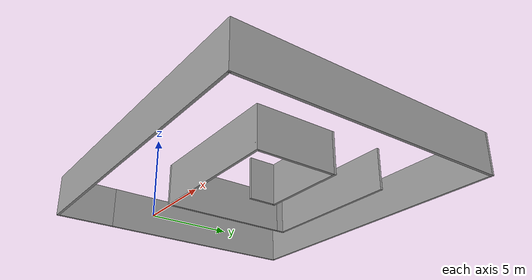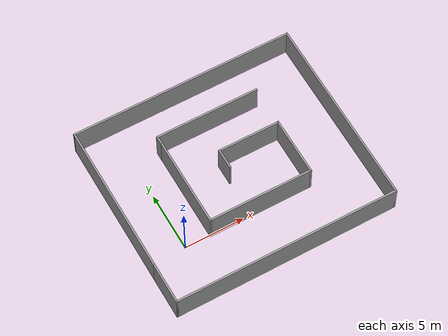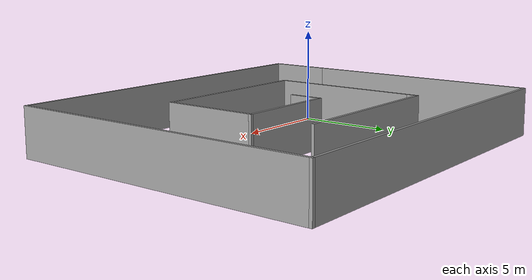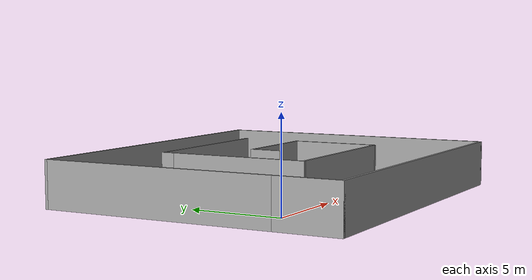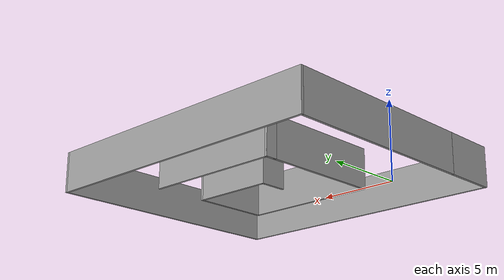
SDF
<?xml version='1.0'?>
<sdf version='1.7'>
  <model name='amr_floor_plan'>
    <pose>6.08 3.37 0 0 -0 0</pose>
    <link name='Wall_0'>
      <collision name='Wall_0_Collision'>
        <geometry>
          <box>
            <size>3.5 0.15 2.5</size>
          </box>
        </geometry>
        <pose>0 0 1.25 0 -0 0</pose>
      </collision>
      <visual name='Wall_0_Visual'>
        <pose>0 0 1.25 0 -0 0</pose>
        <geometry>
          <box>
            <size>3.5 0.15 2.5</size>
          </box>
        </geometry>
        <material>
          <script>
            <uri>file://media/materials/scripts/gazebo.material</uri>
            <name>Gazebo/Grey</name>
          </script>
          <ambient>1 1 1 1</ambient>
        </material>
        <meta>
          <layer>0</layer>
        </meta>
      </visual>
      <pose>-9.3 -6.375 0 0 -0 -1.5708</pose>
    </link>
    <link name='Wall_1'>
      <collision name='Wall_1_Collision'>
        <geometry>
          <box>
            <size>18.75 0.15 2.5</size>
          </box>
        </geometry>
        <pose>0 0 1.25 0 -0 0</pose>
      </collision>
      <visual name='Wall_1_Visual'>
        <pose>0 0 1.25 0 -0 0</pose>
        <geometry>
          <box>
            <size>18.75 0.15 2.5</size>
          </box>
        </geometry>
        <material>
          <script>
            <uri>file://media/materials/scripts/gazebo.material</uri>
            <name>Gazebo/Grey</name>
          </script>
          <ambient>1 1 1 1</ambient>
        </material>
        <meta>
          <layer>0</layer>
        </meta>
      </visual>
      <pose>-0 -8.05 0 0 -0 0</pose>
    </link>
    <link name='Wall_10'>
      <collision name='Wall_10_Collision'>
        <geometry>
          <box>
            <size>8.75 0.15 2.5</size>
          </box>
        </geometry>
        <pose>0 0 1.25 0 -0 0</pose>
      </collision>
      <visual name='Wall_10_Visual'>
        <pose>0 0 1.25 0 -0 0</pose>
        <geometry>
          <box>
            <size>8.75 0.15 2.5</size>
          </box>
        </geometry>
        <material>
          <script>
            <uri>file://media/materials/scripts/gazebo.material</uri>
            <name>Gazebo/Grey</name>
          </script>
          <ambient>1 1 1 1</ambient>
        </material>
        <meta>
          <layer>0</layer>
        </meta>
      </visual>
      <pose>0.357755 -3.42946 0 0 -0 0</pose>
    </link>
    <link name='Wall_11'>
      <collision name='Wall_11_Collision'>
        <geometry>
          <box>
            <size>5 0.15 2.5</size>
          </box>
        </geometry>
        <pose>0 0 1.25 0 -0 0</pose>
      </collision>
      <visual name='Wall_11_Visual'>
        <pose>0 0 1.25 0 -0 0</pose>
        <geometry>
          <box>
            <size>5 0.15 2.5</size>
          </box>
        </geometry>
        <material>
          <script>
            <uri>file://media/materials/scripts/gazebo.material</uri>
            <name>Gazebo/Grey</name>
          </script>
          <ambient>1 1 1 1</ambient>
        </material>
        <meta>
          <layer>0</layer>
        </meta>
      </visual>
      <pose>4.65775 -1.00446 0 0 -0 1.5708</pose>
    </link>
    <link name='Wall_12'>
      <collision name='Wall_12_Collision'>
        <geometry>
          <box>
            <size>5.25 0.15 2.5</size>
          </box>
        </geometry>
        <pose>0 0 1.25 0 -0 0</pose>
      </collision>
      <visual name='Wall_12_Visual'>
        <pose>0 0 1.25 0 -0 0</pose>
        <geometry>
          <box>
            <size>5.25 0.15 2.5</size>
          </box>
        </geometry>
        <material>
          <script>
            <uri>file://media/materials/scripts/gazebo.material</uri>
            <name>Gazebo/Grey</name>
          </script>
          <ambient>1 1 1 1</ambient>
        </material>
        <meta>
          <layer>0</layer>
        </meta>
      </visual>
      <pose>2.10776 1.42054 0 0 -0 3.14159</pose>
    </link>
    <link name='Wall_13'>
      <collision name='Wall_13_Collision'>
        <geometry>
          <box>
            <size>1.75 0.15 2.5</size>
          </box>
        </geometry>
        <pose>0 0 1.25 0 -0 0</pose>
      </collision>
      <visual name='Wall_13_Visual'>
        <pose>0 0 1.25 0 -0 0</pose>
        <geometry>
          <box>
            <size>1.75 0.15 2.5</size>
          </box>
        </geometry>
        <material>
          <script>
            <uri>file://media/materials/scripts/gazebo.material</uri>
            <name>Gazebo/Grey</name>
          </script>
          <ambient>1 1 1 1</ambient>
        </material>
        <meta>
          <layer>0</layer>
        </meta>
      </visual>
      <pose>-0.442246 0.620537 0 0 -0 -1.5708</pose>
    </link>
    <link name='Wall_17'>
      <collision name='Wall_17_Collision'>
        <geometry>
          <box>
            <size>0.75 0.15 2.5</size>
          </box>
        </geometry>
        <pose>0 0 1.25 0 -0 0</pose>
      </collision>
      <visual name='Wall_17_Visual'>
        <pose>0 0 1.25 0 -0 0</pose>
        <geometry>
          <box>
            <size>0.75 0.15 2.5</size>
          </box>
        </geometry>
        <material>
          <script>
            <uri>file://media/materials/scripts/gazebo.material</uri>
            <name>Gazebo/Grey</name>
          </script>
          <ambient>1 1 1 1</ambient>
        </material>
        <meta>
          <layer>0</layer>
        </meta>
      </visual>
      <pose>-3.94225 4.47054 0 0 -0 1.5708</pose>
    </link>
    <link name='Wall_18'>
      <collision name='Wall_18_Collision'>
        <geometry>
          <box>
            <size>8.75 0.15 2.5</size>
          </box>
        </geometry>
        <pose>0 0 1.25 0 -0 0</pose>
      </collision>
      <visual name='Wall_18_Visual'>
        <pose>0 0 1.25 0 -0 0</pose>
        <geometry>
          <box>
            <size>8.75 0.15 2.5</size>
          </box>
        </geometry>
        <material>
          <script>
            <uri>file://media/materials/scripts/gazebo.material</uri>
            <name>Gazebo/Grey</name>
          </script>
          <ambient>1 1 1 1</ambient>
        </material>
        <meta>
          <layer>0</layer>
        </meta>
      </visual>
      <pose>0.357755 4.77054 0 0 -0 0</pose>
    </link>
    <link name='Wall_2'>
      <collision name='Wall_2_Collision'>
        <geometry>
          <box>
            <size>16.25 0.15 2.5</size>
          </box>
        </geometry>
        <pose>0 0 1.25 0 -0 0</pose>
      </collision>
      <visual name='Wall_2_Visual'>
        <pose>0 0 1.25 0 -0 0</pose>
        <geometry>
          <box>
            <size>16.25 0.15 2.5</size>
          </box>
        </geometry>
        <material>
          <script>
            <uri>file://media/materials/scripts/gazebo.material</uri>
            <name>Gazebo/Grey</name>
          </script>
          <ambient>1 1 1 1</ambient>
        </material>
        <meta>
          <layer>0</layer>
        </meta>
      </visual>
      <pose>9.3 0 0 0 -0 1.5708</pose>
    </link>
    <link name='Wall_6'>
      <collision name='Wall_6_Collision'>
        <geometry>
          <box>
            <size>18.75 0.15 2.5</size>
          </box>
        </geometry>
        <pose>0 0 1.25 0 -0 0</pose>
      </collision>
      <visual name='Wall_6_Visual'>
        <pose>0 0 1.25 0 -0 0</pose>
        <geometry>
          <box>
            <size>18.75 0.15 2.5</size>
          </box>
        </geometry>
        <material>
          <script>
            <uri>file://media/materials/scripts/gazebo.material</uri>
            <name>Gazebo/Grey</name>
          </script>
          <ambient>1 1 1 1</ambient>
        </material>
        <meta>
          <layer>0</layer>
        </meta>
      </visual>
      <pose>-0 8.05 0 0 -0 3.14159</pose>
    </link>
    <link name='Wall_7'>
      <collision name='Wall_7_Collision'>
        <geometry>
          <box>
            <size>12.75 0.15 2.5</size>
          </box>
        </geometry>
        <pose>0 0 1.25 0 -0 0</pose>
      </collision>
      <visual name='Wall_7_Visual'>
        <pose>0 0 1.25 0 -0 0</pose>
        <geometry>
          <box>
            <size>12.75 0.15 2.5</size>
          </box>
        </geometry>
        <material>
          <script>
            <uri>file://media/materials/scripts/gazebo.material</uri>
            <name>Gazebo/Grey</name>
          </script>
          <ambient>1 1 1 1</ambient>
        </material>
        <meta>
          <layer>0</layer>
        </meta>
      </visual>
      <pose>-9.3 1.75 0 0 -0 -1.5708</pose>
    </link>
    <link name='Wall_9'>
      <collision name='Wall_9_Collision'>
        <geometry>
          <box>
            <size>7.75 0.15 2.5</size>
          </box>
        </geometry>
        <pose>0 0 1.25 0 -0 0</pose>
      </collision>
      <visual name='Wall_9_Visual'>
        <pose>0 0 1.25 0 -0 0</pose>
        <geometry>
          <box>
            <size>7.75 0.15 2.5</size>
          </box>
        </geometry>
        <material>
          <script>
            <uri>file://media/materials/scripts/gazebo.material</uri>
            <name>Gazebo/Grey</name>
          </script>
          <ambient>1 1 1 1</ambient>
        </material>
        <meta>
          <layer>0</layer>
        </meta>
      </visual>
      <pose>-3.94225 0.370537 0 0 -0 -1.5708</pose>
    </link>
    <static>1</static>
  </model>
</sdf>
